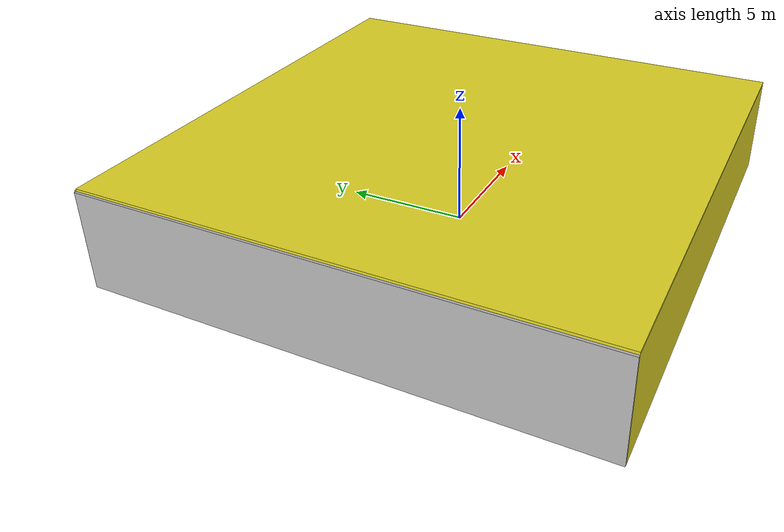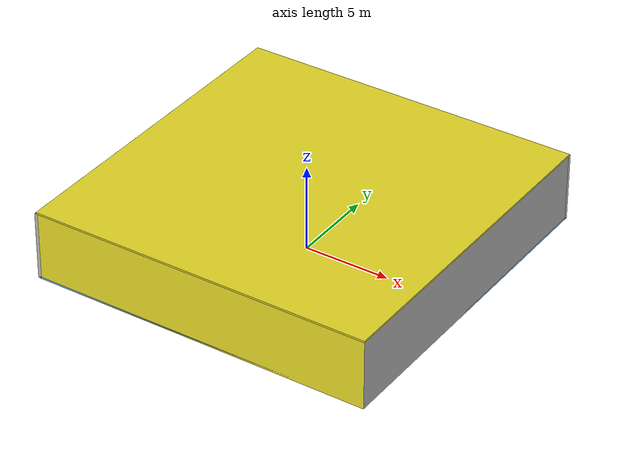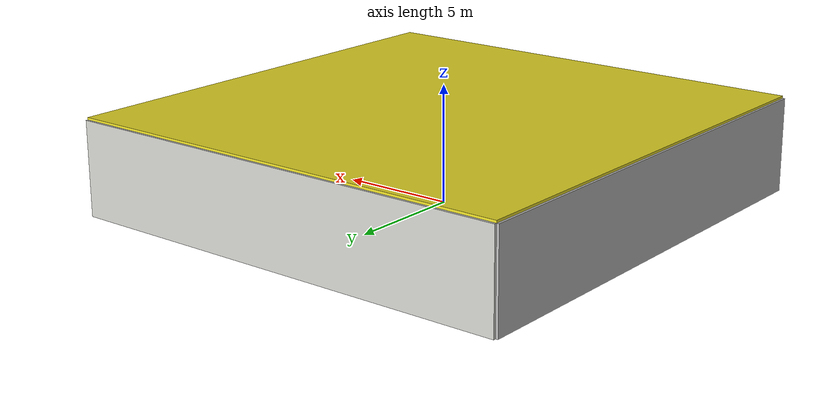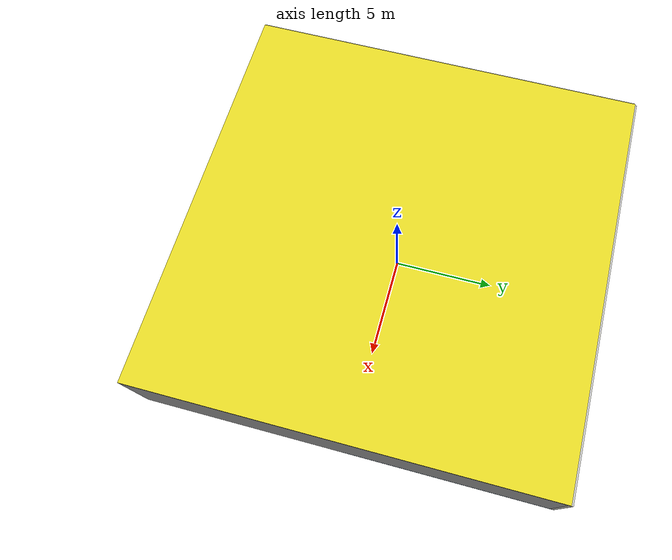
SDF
<sdf version="1.4">
 <world name="default">
  <physics type="ode">
   <max_step_size>0.001</max_step_size>
   <real_time_factor>1</real_time_factor>
   <real_time_update_rate>1000</real_time_update_rate>
   <gravity>0 0 -9.8</gravity>
  </physics>
  <scene><ambient>0.4 0.4 0.4 1</ambient><background>0.7 0.7 0.7 1</background><shadows>1</shadows></scene>
  <model name="Surrounding">
   <static>1</static>
   <link name="Ceiling">
    <collision name="Ceiling_Collision"><geometry><box><size>20 20 0.1</size></box></geometry></collision>
    <visual name="Ceiling_Visual">
     <geometry><box><size>20 20 0.1</size></box></geometry>
     <material>
      <script><uri>file://media/materials/scripts/gazebo.material</uri><name>Gazebo/Yellow</name></script>
     </material>
    </visual>
    <pose>0 0 4.05 0 0 0</pose>
   </link>
   <link name="Wall_South">
    <collision name="Wall_South_Collision">
     <geometry><box><size>20 0 4</size></box></geometry>
     <pose>0 0 2 0 -0 0</pose>
    </collision>
    <visual name="Wall_South_Visual">
     <pose>0 0 2 0 -0 0</pose>
     <geometry><box><size>20 0 4</size></box></geometry>
     <material>
      <script><uri>file://media/materials/scripts/gazebo.material</uri><name>Gazebo/YellowGlow</name></script>
     </material>
    </visual>
    <velocity_decay><linear>0</linear><angular>0</angular></velocity_decay>
    <pose>0 -10 0 0 -0 0</pose>
   </link>
   <link name="Wall_East">
    <collision name="Wall_21_Collision">
     <geometry><box><size>20 0 4</size></box></geometry>
     <pose>0 0 2 0 -0 0</pose>
    </collision>
    <visual name="Wall_21_Visual">
     <pose>0 0 2 0 -0 0</pose>
     <geometry><box><size>20 0 4</size></box></geometry>
     <material>
      <script><uri>file://media/materials/scripts/gazebo.material</uri><name>Gazebo/PioneerBody</name></script>
     </material>
    </visual>
    <velocity_decay><linear>0</linear><angular>0</angular></velocity_decay>
    <pose>10 0 0 0 -0 1.5708</pose>
   </link>
   <link name="Wall_North">
    <collision name="Wall_22_Collision">
     <geometry><box><size>20 0.2 4</size></box></geometry>
     <pose>0 0 2 0 -0 0</pose>
    </collision>
    <visual name="Wall_22_Visual">
     <pose>0 0 2 0 -0 0</pose>
     <geometry><box><size>20 0.2 4</size></box></geometry>
     <material>
      <script><uri>file://media/materials/scripts/gazebo.material</uri><name>Gazebo/CeilingTiled</name></script>
     </material>
    </visual>
    <velocity_decay><linear>0</linear><angular>0</angular></velocity_decay>
    <pose>0 10 0 0 -0 0</pose>
   </link>
   <link name="Wall_West">
    <collision name="Wall_23_Collision">
     <geometry><box><size>20 0.2 4</size></box></geometry>
     <pose>0 0 2 0 -0 0</pose>
    </collision>
    <visual name="Wall_23_Visual">
     <pose>0 0 2 0 -0 0</pose>
     <geometry><box><size>20 0.2 4</size></box></geometry>
     <material>
      <script><uri>file://media/materials/scripts/gazebo.material</uri><name>Gazebo/CloudySky</name></script>
     </material>
    </visual>
    <velocity_decay><linear>0</linear><angular>0</angular></velocity_decay>
    <pose>-10 0 0 0 0 -1.5708</pose>
   </link>
   <link name="Ground_link">
    <collision name="collision">
     <pose>0 0 .05 0 -0 0</pose>
     <geometry><box><size>20 20 0.1</size></box></geometry>
    </collision>
    <visual name="visual">
     <pose>0 0 .05 0 -0 0</pose>
     <geometry><box><size>20 20 0.1</size></box></geometry>
     <material>
      <script><uri>file://media/materials/scripts/gazebo.material</uri><name>Gazebo/SkyBlue</name></script>
     </material>
    </visual>
   </link>
   <static>1</static>
  </model>
  <spherical_coordinates>
   <surface_model>EARTH_WGS84</surface_model>
   <latitude_deg>0</latitude_deg>
   <longitude_deg>0</longitude_deg>
   <elevation>0</elevation>
   <heading_deg>0</heading_deg>
  </spherical_coordinates>
  <light name="lightball_0" type="diffuse">
   <diffuse>0.8 0.8 0.8 1</diffuse>
   <specular>0.2 0.2 0.2 1</specular>
   <attenuation>
    <range>100</range>
    <constant>0.7</constant>
    <linear>0.01</linear>
    <quadratic>0.001</quadratic>
   </attenuation>
   <direction>-0.5 0.1 -0.9</direction>
   <pose>-3.81533544385 3.94762835709 1.25021422119 0 0 0</pose>
  </light>
  <light name="lightball_1" type="diffuse">
   <diffuse>0.8 0.8 0.8 1</diffuse>
   <specular>0.2 0.2 0.2 1</specular>
   <attenuation>
    <range>100</range>
    <constant>0.7</constant>
    <linear>0.01</linear>
    <quadratic>0.001</quadratic>
   </attenuation>
   <direction>-0.5 0.1 -0.9</direction>
   <pose>-7.96697166268 6.15112688608 3.13228918656 0 0 0</pose>
  </light>
  <light name="lightball_2" type="diffuse">
   <diffuse>0.8 0.8 0.8 1</diffuse>
   <specular>0.2 0.2 0.2 1</specular>
   <attenuation>
    <range>100</range>
    <constant>0.7</constant>
    <linear>0.01</linear>
    <quadratic>0.001</quadratic>
   </attenuation>
   <direction>-0.5 0.1 -0.9</direction>
   <pose>8.90741147035 -8.15056963435 2.27294163926 0 0 0</pose>
  </light>
  <light name="lightball_3" type="diffuse">
   <diffuse>0.8 0.8 0.8 1</diffuse>
   <specular>0.2 0.2 0.2 1</specular>
   <attenuation>
    <range>100</range>
    <constant>0.7</constant>
    <linear>0.01</linear>
    <quadratic>0.001</quadratic>
   </attenuation>
   <direction>-0.5 0.1 -0.9</direction>
   <pose>-3.90656176936 0.107003142372 1.15298836863 0 0 0</pose>
  </light>
  <light name="lightball_4" type="diffuse">
   <diffuse>0.8 0.8 0.8 1</diffuse>
   <specular>0.2 0.2 0.2 1</specular>
   <attenuation>
    <range>100</range>
    <constant>0.7</constant>
    <linear>0.01</linear>
    <quadratic>0.001</quadratic>
   </attenuation>
   <direction>-0.5 0.1 -0.9</direction>
   <pose>-1.42577548073 -1.13250478363 2.96154113005 0 0 0</pose>
  </light>
  <light name="lightball_5" type="diffuse">
   <diffuse>0.8 0.8 0.8 1</diffuse>
   <specular>0.2 0.2 0.2 1</specular>
   <attenuation>
    <range>100</range>
    <constant>0.7</constant>
    <linear>0.01</linear>
    <quadratic>0.001</quadratic>
   </attenuation>
   <direction>-0.5 0.1 -0.9</direction>
   <pose>3.36897338622 0.871645869557 3.69305726465 0 0 0</pose>
  </light>
  <light name="lightball_6" type="diffuse">
   <diffuse>0.8 0.8 0.8 1</diffuse>
   <specular>0.2 0.2 0.2 1</specular>
   <attenuation>
    <range>100</range>
    <constant>0.7</constant>
    <linear>0.01</linear>
    <quadratic>0.001</quadratic>
   </attenuation>
   <direction>-0.5 0.1 -0.9</direction>
   <pose>-5.05292213251 -2.66591805679 2.57454602669 0 0 0</pose>
  </light>
  <light name="lightball_7" type="diffuse">
   <diffuse>0.8 0.8 0.8 1</diffuse>
   <specular>0.2 0.2 0.2 1</specular>
   <attenuation>
    <range>100</range>
    <constant>0.7</constant>
    <linear>0.01</linear>
    <quadratic>0.001</quadratic>
   </attenuation>
   <direction>-0.5 0.1 -0.9</direction>
   <pose>-2.57703960364 5.53239963945 3.54392899394 0 0 0</pose>
  </light>
  <include>
   <uri>model://textured_shapes</uri>
   <pose>-2.20414528083 4.11203387389 0 0 0 0.45831974841</pose>
  </include>
  <include><uri>model://cabinet</uri><pose>2.25947456428 -1.88628905357 0 0 0 0.913107570643</pose></include>
  <include>
   <uri>model://construction_cone</uri>
   <pose>3.84214467496 -2.21651836365 0 0 0 2.65253555932</pose>
  </include>
 </world>
</sdf>

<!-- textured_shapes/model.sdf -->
<sdf version="1.6">
  <model name="textured_shapes">
    <pose>0 0 0.5 0 0 0</pose>
    <link name="box">
      <pose>0 -1.5 0 0 0 0</pose>
      <collision name="collision">
        <geometry>
          <box>
            <size>1 1 1</size>
          </box>
        </geometry>
      </collision>
      <visual name="visual">
        <geometry>
          <box>
            <size>1 1 1</size>
          </box>
        </geometry>
        <material>
          <script>
            <uri>model://../model_source/models/textured_shapes/materials/scripts</uri>
            <uri>model://../model_source/models/textured_shapes/materials/textures</uri>
            <name>TexturedShape/Squares</name>
          </script>
        </material>
      </visual>
    </link>
    <link name="sphere">
      <collision name="collision">
        <geometry>
          <sphere>
            <radius>0.5</radius>
          </sphere>
        </geometry>
      </collision>
      <visual name="visual">
        <geometry>
          <sphere>
            <radius>0.5</radius>
          </sphere>
        </geometry>
        <material>
          <script>
            <uri>model://../model_source/models/textured_shapes/materials/scripts</uri>
            <uri>model://../model_source/models/textured_shapes/materials/textures</uri>
            <name>TexturedShape/Squares</name>
          </script>
        </material>
      </visual>
    </link>
    <link name="cylinder">
      <pose>0 1.5 0 0 0 0</pose>
      <collision name="collision">
        <geometry>
          <cylinder>
            <radius>0.5</radius>
            <length>1</length>
          </cylinder>
        </geometry>
      </collision>
      <visual name="visual">
        <geometry>
          <cylinder>
            <radius>0.5</radius>
            <length>1</length>
          </cylinder>
        </geometry>
        <material>
          <script>
            <uri>model://../model_source/models/textured_shapes/materials/scripts</uri>
            <uri>model://../model_source/models/textured_shapes/materials/textures</uri>
            <name>TexturedShape/Squares</name>
          </script>
        </material>
      </visual>
    </link>
  </model>
</sdf>

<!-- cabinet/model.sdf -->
<sdf version="1.5">
  <model name="cabinet">
    <static>true</static>
    <link name="cabinet_bottom_plate">
      <inertial>
        <pose>0 0 -1 0 0 0</pose>
        <inertia>
          <ixx>2.050000</ixx>
          <ixy>0</ixy>
          <ixz>0</ixz>
          <iyy>2.050000</iyy>
          <iyz>0</iyz>
          <izz>2.050000</izz>
        </inertia>
        <mass>25.000000</mass>
      </inertial>
      <collision name="cabinet_bottom_plate_geom">
        <pose>0 0 0.010000 0 0 0</pose>
        <geometry>
          <box>
            <size>0.450000 0.450000 0.020000</size>
          </box>
        </geometry>
      </collision>
      <visual name="cabinet_bottom_plate_geom_visual">
        <pose>0 0 0.010000 0 0 0</pose>
        <geometry>
          <box>
            <size>0.450000 0.450000 0.020000</size>
          </box>
        </geometry>
        <material>
          <script>
            <uri>model://media/materials/scripts/gazebo.material</uri>
            <name>Gazebo/Wood</name>
          </script>
        </material>
      </visual>
      <collision name="cabinet_bottom_plate_geom_cabinet_back_plate">
        <pose>0.235000 0 0.510000 0 0 0</pose>
        <geometry>
          <box>
            <size>0.020000 0.450000 1.020000</size>
          </box>
        </geometry>
      </collision>
      <visual name="cabinet_bottom_plate_geom_cabinet_back_plate_visual">
        <pose>0.235000 0 0.510000 0 0 0</pose>
        <geometry>
          <box>
            <size>0.020000 0.450000 1.020000</size>
          </box>
        </geometry>
        <material>
          <script>
            <uri>model://media/materials/scripts/gazebo.material</uri>
            <name>Gazebo/Wood</name>
          </script>
        </material>
      </visual>
      <collision name="cabinet_bottom_plate_geom_cabinet_left_plate">
        <pose>0 0.235000 0.510000 0 0 0</pose>
        <geometry>
          <box>
            <size>0.450000 0.020000 1.020000</size>
          </box>
        </geometry>
      </collision>
      <visual name="cabinet_bottom_plate_geom_cabinet_left_plate_visual">
        <pose>0 0.235000 0.510000 0 0 0</pose>
        <geometry>
          <box>
            <size>0.450000 0.020000 1.020000</size>
          </box>
        </geometry>
        <material>
          <script>
            <uri>model://media/materials/scripts/gazebo.material</uri>
            <name>Gazebo/Wood</name>
          </script>
        </material>
      </visual>
      <collision name="cabinet_bottom_plate_geom_cabinet_middle_plate">
        <pose>0 0 0.510000 0 0 0</pose>
        <geometry>
          <box>
            <size>0.450000 0.450000 0.020000</size>
          </box>
        </geometry>
      </collision>
      <visual name="cabinet_bottom_plate_geom_cabinet_middle_plate_visual">
        <pose>0 0 0.510000 0 0 0</pose>
        <geometry>
          <box>
            <size>0.450000 0.450000 0.020000</size>
          </box>
        </geometry>
        <material>
          <script>
            <uri>model://media/materials/scripts/gazebo.material</uri>
            <name>Gazebo/Wood</name>
          </script>
        </material>
      </visual>
      <collision name="cabinet_bottom_plate_geom_cabinet_right_plate">
        <pose>0 -0.235000 0.510000 0 0 0</pose>
        <geometry>
          <box>
            <size>0.450000 0.020000 1.020000</size>
          </box>
        </geometry>
      </collision>
      <visual name="cabinet_bottom_plate_geom_cabinet_right_plate_visual">
        <pose>0 -0.235000 0.510000 0 0 0</pose>
        <geometry>
          <box>
            <size>0.450000 0.020000 1.020000</size>
          </box>
        </geometry>
        <material>
          <script>
            <uri>model://media/materials/scripts/gazebo.material</uri>
            <name>Gazebo/Wood</name>
          </script>
        </material>
      </visual>
      <collision name="cabinet_bottom_plate_geom_cabinet_top_plate">
        <pose>0 0 1.010000 0 0 0</pose>
        <geometry>
          <box>
            <size>0.450000 0.450000 0.020000</size>
          </box>
        </geometry>
      </collision>
      <visual name="cabinet_bottom_plate_geom_cabinet_top_plate_visual">
        <pose>0 0 1.010000 0 0 0</pose>
        <geometry>
          <box>
            <size>0.450000 0.450000 0.020000</size>
          </box>
        </geometry>
        <material>
          <script>
            <uri>model://media/materials/scripts/gazebo.material</uri>
            <name>Gazebo/Wood</name>
          </script>
        </material>
      </visual>
    </link>
  </model>
</sdf>

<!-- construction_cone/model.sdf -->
<sdf version="1.5">
  <model name="Construction Cone">
    <link name="link">
      <collision name="collision">
        <geometry>
          <mesh>
            <scale>10 10 10</scale>
            <uri>file://isr-testbed/construction_cone/meshes/construction_cone.dae</uri>
          </mesh>
        </geometry>
      </collision>
      <visual name="visual">
        <geometry>
          <mesh>
            <scale>10 10 10</scale>
            <uri>file://isr-testbed/construction_cone/meshes/construction_cone.dae</uri>
          </mesh>
        </geometry>
      </visual>
    </link>
  </model>
</sdf>
